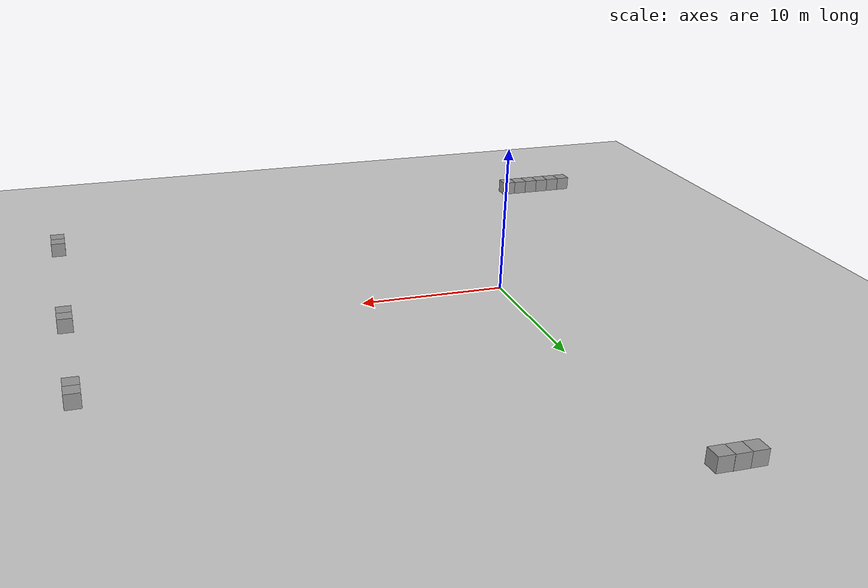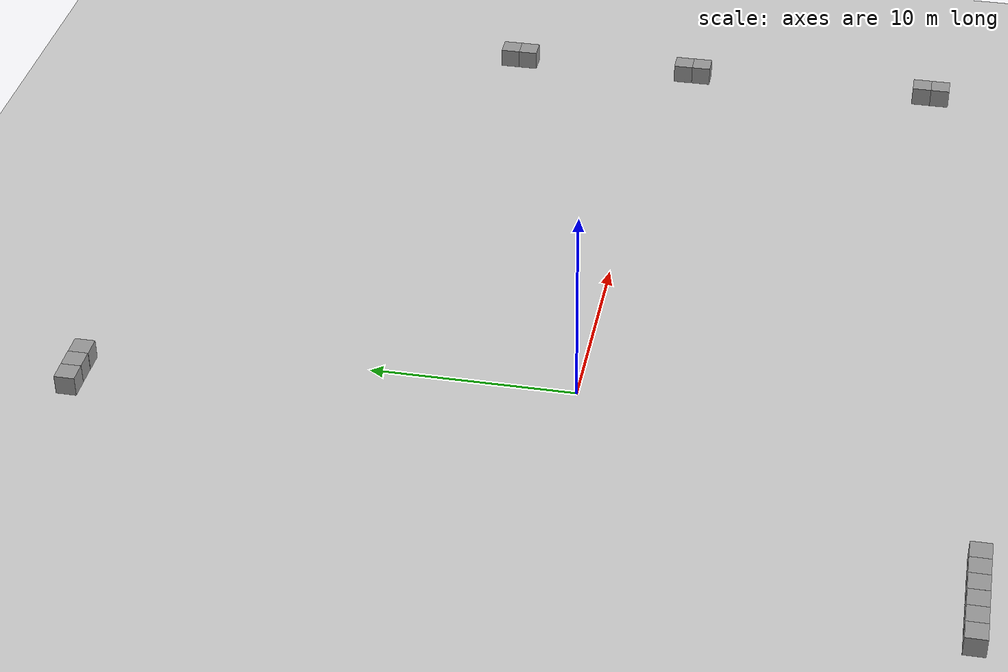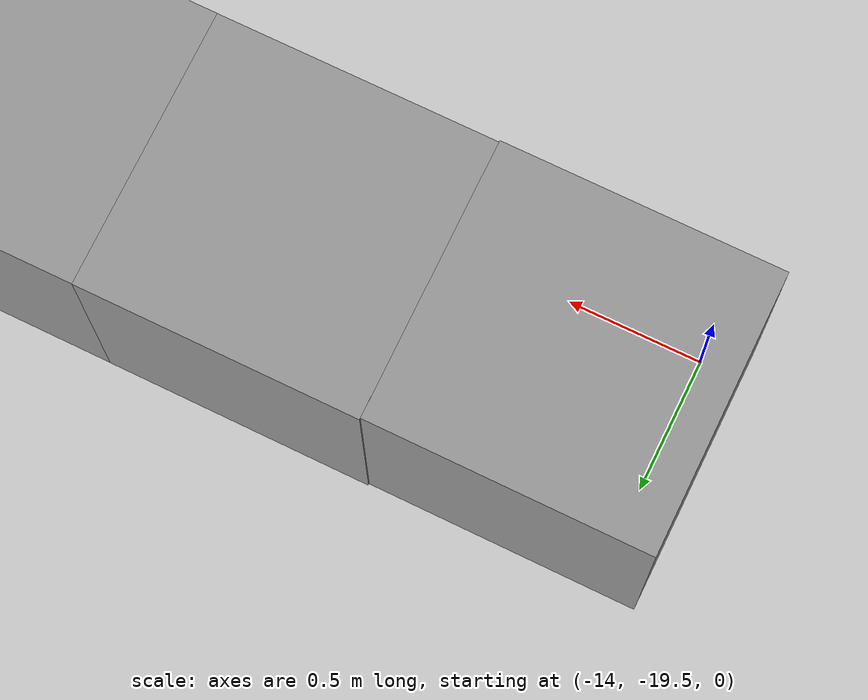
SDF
<sdf version="1.6">
 <world name="default">
  <model name="ground_plane">
   <static>1</static>
   <link name="link">
    <collision name="collision">
     <geometry><plane><normal>0 0 1</normal><size>100 100</size></plane></geometry>
     <surface><friction><ode><mu>100</mu><mu2>50</mu2></ode></friction></surface>
    </collision>
    <visual name="visual">
     <cast_shadows>0</cast_shadows>
     <geometry><plane><normal>0 0 1</normal><size>100 100</size></plane></geometry>
     <material>
      <script><uri>file://media/materials/scripts/gazebo.material</uri><name>Gazebo/Grey</name></script>
     </material>
    </visual>
   </link>
  </model>
  <light name="sun" type="directional">
   <pose>0 0 10 0 -0 0</pose>
   <diffuse>0.8 0.8 0.8 1</diffuse>
   <specular>0.1 0.1 0.1 1</specular>
   <attenuation>
    <range>1000</range>
    <constant>0.9</constant>
    <linear>0.01</linear>
    <quadratic>0.001</quadratic>
   </attenuation>
   <direction>-0.5 0.5 -1</direction>
  </light>
  <gravity>0 0 -9.8</gravity>
  <magnetic_field>6e-06 2.3e-05 -4.2e-05</magnetic_field>
  <atmosphere type="adiabatic"/>
  <physics name="default_physics" default="0" type="ode">
   <max_step_size>0.001</max_step_size>
   <real_time_factor>1</real_time_factor>
   <real_time_update_rate>1000</real_time_update_rate>
  </physics>
  <scene><ambient>0.4 0.4 0.4 1</ambient><background>0.7 0.7 0.7 1</background><shadows>1</shadows></scene>
  <spherical_coordinates>
   <surface_model>EARTH_WGS84</surface_model>
   <latitude_deg>0</latitude_deg>
   <longitude_deg>0</longitude_deg>
   <elevation>0</elevation>
   <heading_deg>0</heading_deg>
  </spherical_coordinates>
  <model name="unit_box_0">
   <pose>-3.86315 23.7175 0.499995 -1e-05 -0 -0.000283</pose>
   <link name="link">
    <inertial>
     <mass>1</mass>
     <inertia>
      <ixx>0.166667</ixx>
      <ixy>0</ixy>
      <ixz>0</ixz>
      <iyy>0.166667</iyy>
      <iyz>0</iyz>
      <izz>0.166667</izz>
     </inertia>
    </inertial>
    <collision name="collision"><geometry><box><size>1 1 1</size></box></geometry></collision>
    <visual name="visual">
     <geometry><box><size>1 1 1</size></box></geometry>
     <material>
      <script><name>Gazebo/Grey</name><uri>file://media/materials/scripts/gazebo.material</uri></script>
     </material>
    </visual>
   </link>
  </model>
  <model name="unit_box_0_clone">
   <pose>-2.86293 23.7194 0.499995 0 1e-05 0.00013</pose>
   <link name="link">
    <inertial>
     <mass>1</mass>
     <inertia>
      <ixx>0.166667</ixx>
      <ixy>0</ixy>
      <ixz>0</ixz>
      <iyy>0.166667</iyy>
      <iyz>0</iyz>
      <izz>0.166667</izz>
     </inertia>
    </inertial>
    <collision name="collision"><geometry><box><size>1 1 1</size></box></geometry></collision>
    <visual name="visual">
     <geometry><box><size>1 1 1</size></box></geometry>
     <material>
      <script><name>Gazebo/Grey</name><uri>file://media/materials/scripts/gazebo.material</uri></script>
     </material>
    </visual>
   </link>
  </model>
  <model name="unit_box_0_clone_0">
   <pose>-1.86292 23.7079 0.499995 1e-05 0 0.000118</pose>
   <link name="link">
    <inertial>
     <mass>1</mass>
     <inertia>
      <ixx>0.166667</ixx>
      <ixy>0</ixy>
      <ixz>0</ixz>
      <iyy>0.166667</iyy>
      <iyz>0</iyz>
      <izz>0.166667</izz>
     </inertia>
    </inertial>
    <collision name="collision"><geometry><box><size>1 1 1</size></box></geometry></collision>
    <visual name="visual">
     <geometry><box><size>1 1 1</size></box></geometry>
     <material>
      <script><name>Gazebo/Grey</name><uri>file://media/materials/scripts/gazebo.material</uri></script>
     </material>
    </visual>
   </link>
  </model>
  <model name="unit_box_0_clone_5">
   <pose>-8.65414 -19.1097 0.499995 1e-05 0 -0.001327</pose>
   <link name="link">
    <inertial>
     <mass>1</mass>
     <inertia>
      <ixx>0.166667</ixx>
      <ixy>0</ixy>
      <ixz>0</ixz>
      <iyy>0.166667</iyy>
      <iyz>0</iyz>
      <izz>0.166667</izz>
     </inertia>
    </inertial>
    <collision name="collision"><geometry><box><size>1 1 1</size></box></geometry></collision>
    <visual name="visual">
     <geometry><box><size>1 1 1</size></box></geometry>
     <material>
      <script><name>Gazebo/Grey</name><uri>file://media/materials/scripts/gazebo.material</uri></script>
     </material>
    </visual>
   </link>
  </model>
  <model name="unit_box_0_clone_6">
   <pose>29.4655 -15.5298 0.499995 -1e-05 -0 -0.000113</pose>
   <link name="link">
    <inertial>
     <mass>1</mass>
     <inertia>
      <ixx>0.166667</ixx>
      <ixy>0</ixy>
      <ixz>0</ixz>
      <iyy>0.166667</iyy>
      <iyz>0</iyz>
      <izz>0.166667</izz>
     </inertia>
    </inertial>
    <collision name="collision"><geometry><box><size>1 1 1</size></box></geometry></collision>
    <visual name="visual">
     <geometry><box><size>1 1 1</size></box></geometry>
     <material>
      <script><name>Gazebo/Grey</name><uri>file://media/materials/scripts/gazebo.material</uri></script>
     </material>
    </visual>
   </link>
  </model>
  <model name="unit_box_0_clone_7">
   <pose>29.4712 -14.5298 0.499995 1e-05 -0 -0.000104</pose>
   <link name="link">
    <inertial>
     <mass>1</mass>
     <inertia>
      <ixx>0.166667</ixx>
      <ixy>0</ixy>
      <ixz>0</ixz>
      <iyy>0.166667</iyy>
      <iyz>0</iyz>
      <izz>0.166667</izz>
     </inertia>
    </inertial>
    <collision name="collision"><geometry><box><size>1 1 1</size></box></geometry></collision>
    <visual name="visual">
     <geometry><box><size>1 1 1</size></box></geometry>
     <material>
      <script><name>Gazebo/Grey</name><uri>file://media/materials/scripts/gazebo.material</uri></script>
     </material>
    </visual>
   </link>
  </model>
  <model name="unit_box_0_clone_8">
   <pose>29.4965 -2.1382 0.5 0 0 -0.000111</pose>
   <link name="link">
    <inertial>
     <mass>1</mass>
     <inertia>
      <ixx>0.166667</ixx>
      <ixy>0</ixy>
      <ixz>0</ixz>
      <iyy>0.166667</iyy>
      <iyz>0</iyz>
      <izz>0.166667</izz>
     </inertia>
    </inertial>
    <collision name="collision"><geometry><box><size>1 1 1</size></box></geometry></collision>
    <visual name="visual">
     <geometry><box><size>1 1 1</size></box></geometry>
     <material>
      <script><name>Gazebo/Grey</name><uri>file://media/materials/scripts/gazebo.material</uri></script>
     </material>
    </visual>
   </link>
  </model>
  <model name="unit_box_0_clone_9">
   <pose>29.4896 -1.1382 0.499971 0 0 -0.000111</pose>
   <link name="link">
    <inertial>
     <mass>1</mass>
     <inertia>
      <ixx>0.166667</ixx>
      <ixy>0</ixy>
      <ixz>0</ixz>
      <iyy>0.166667</iyy>
      <iyz>0</iyz>
      <izz>0.166667</izz>
     </inertia>
    </inertial>
    <collision name="collision"><geometry><box><size>1 1 1</size></box></geometry></collision>
    <visual name="visual">
     <geometry><box><size>1 1 1</size></box></geometry>
     <material>
      <script><name>Gazebo/Grey</name><uri>file://media/materials/scripts/gazebo.material</uri></script>
     </material>
    </visual>
   </link>
  </model>
  <model name="unit_box_0_clone_11">
   <pose>29.4577 8.79955 0.499995 0 -1e-05 0.001459</pose>
   <link name="link">
    <inertial>
     <mass>1</mass>
     <inertia>
      <ixx>0.166667</ixx>
      <ixy>0</ixy>
      <ixz>0</ixz>
      <iyy>0.166667</iyy>
      <iyz>0</iyz>
      <izz>0.166667</izz>
     </inertia>
    </inertial>
    <collision name="collision"><geometry><box><size>1 1 1</size></box></geometry></collision>
    <visual name="visual">
     <geometry><box><size>1 1 1</size></box></geometry>
     <material>
      <script><name>Gazebo/Grey</name><uri>file://media/materials/scripts/gazebo.material</uri></script>
     </material>
    </visual>
   </link>
  </model>
  <model name="unit_box_0_clone_10">
   <pose>29.456 7.79935 0.499995 0 -1e-05 0.001856</pose>
   <link name="link">
    <inertial>
     <mass>1</mass>
     <inertia>
      <ixx>0.166667</ixx>
      <ixy>0</ixy>
      <ixz>0</ixz>
      <iyy>0.166667</iyy>
      <iyz>0</iyz>
      <izz>0.166667</izz>
     </inertia>
    </inertial>
    <collision name="collision"><geometry><box><size>1 1 1</size></box></geometry></collision>
    <visual name="visual">
     <geometry><box><size>1 1 1</size></box></geometry>
     <material>
      <script><name>Gazebo/Grey</name><uri>file://media/materials/scripts/gazebo.material</uri></script>
     </material>
    </visual>
   </link>
  </model>
  <model name="unit_box_2">
   <pose>-9.65416 -19.1053 0.5 0 0 -0.001326</pose>
   <link name="link">
    <inertial>
     <mass>1</mass>
     <inertia>
      <ixx>0.166667</ixx>
      <ixy>0</ixy>
      <ixz>0</ixz>
      <iyy>0.166667</iyy>
      <iyz>0</iyz>
      <izz>0.166667</izz>
     </inertia>
    </inertial>
    <collision name="collision"><geometry><box><size>1 1 1</size></box></geometry></collision>
    <visual name="visual">
     <geometry><box><size>1 1 1</size></box></geometry>
     <material>
      <script><name>Gazebo/Grey</name><uri>file://media/materials/scripts/gazebo.material</uri></script>
     </material>
    </visual>
   </link>
  </model>
  <model name="unit_box_3">
   <pose>-10.6542 -19.1077 0.499995 -0 1e-05 -0.00117</pose>
   <link name="link">
    <inertial>
     <mass>1</mass>
     <inertia>
      <ixx>0.166667</ixx>
      <ixy>0</ixy>
      <ixz>0</ixz>
      <iyy>0.166667</iyy>
      <iyz>0</iyz>
      <izz>0.166667</izz>
     </inertia>
    </inertial>
    <collision name="collision"><geometry><box><size>1 1 1</size></box></geometry></collision>
    <visual name="visual">
     <geometry><box><size>1 1 1</size></box></geometry>
     <material>
      <script><name>Gazebo/Grey</name><uri>file://media/materials/scripts/gazebo.material</uri></script>
     </material>
    </visual>
   </link>
  </model>
  <model name="unit_box_4">
   <pose>-11.6543 -19.1123 0.5 0 0 -0.001168</pose>
   <link name="link">
    <inertial>
     <mass>1</mass>
     <inertia>
      <ixx>0.166667</ixx>
      <ixy>0</ixy>
      <ixz>0</ixz>
      <iyy>0.166667</iyy>
      <iyz>0</iyz>
      <izz>0.166667</izz>
     </inertia>
    </inertial>
    <collision name="collision"><geometry><box><size>1 1 1</size></box></geometry></collision>
    <visual name="visual">
     <geometry><box><size>1 1 1</size></box></geometry>
     <material>
      <script><name>Gazebo/Grey</name><uri>file://media/materials/scripts/gazebo.material</uri></script>
     </material>
    </visual>
   </link>
  </model>
  <model name="unit_box_1_0">
   <pose>-12.6543 -19.1107 0.5 0 0 -0.00116</pose>
   <link name="link">
    <inertial>
     <mass>1</mass>
     <inertia>
      <ixx>0.166667</ixx>
      <ixy>0</ixy>
      <ixz>0</ixz>
      <iyy>0.166667</iyy>
      <iyz>0</iyz>
      <izz>0.166667</izz>
     </inertia>
    </inertial>
    <collision name="collision"><geometry><box><size>1 1 1</size></box></geometry></collision>
    <visual name="visual">
     <geometry><box><size>1 1 1</size></box></geometry>
     <material>
      <script><name>Gazebo/Grey</name><uri>file://media/materials/scripts/gazebo.material</uri></script>
     </material>
    </visual>
   </link>
  </model>
  <model name="unit_box_1_1">
   <pose>-13.6543 -19.1154 0.499995 1e-05 -0 -0.001048</pose>
   <link name="link">
    <inertial>
     <mass>1</mass>
     <inertia>
      <ixx>0.166667</ixx>
      <ixy>0</ixy>
      <ixz>0</ixz>
      <iyy>0.166667</iyy>
      <iyz>0</iyz>
      <izz>0.166667</izz>
     </inertia>
    </inertial>
    <collision name="collision"><geometry><box><size>1 1 1</size></box></geometry></collision>
    <visual name="visual">
     <geometry><box><size>1 1 1</size></box></geometry>
     <material>
      <script><name>Gazebo/Grey</name><uri>file://media/materials/scripts/gazebo.material</uri></script>
     </material>
    </visual>
   </link>
  </model>
 </world>
</sdf>
